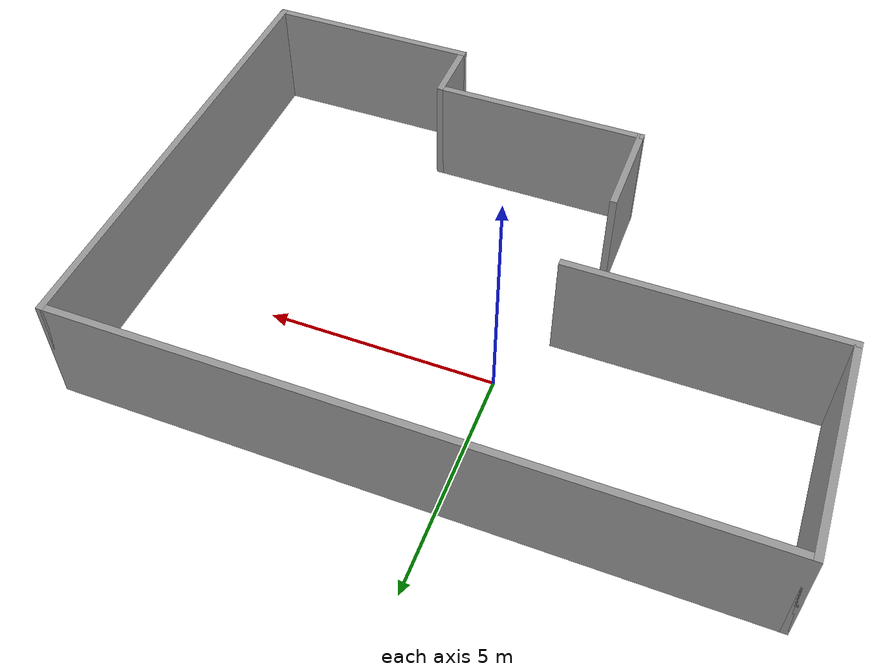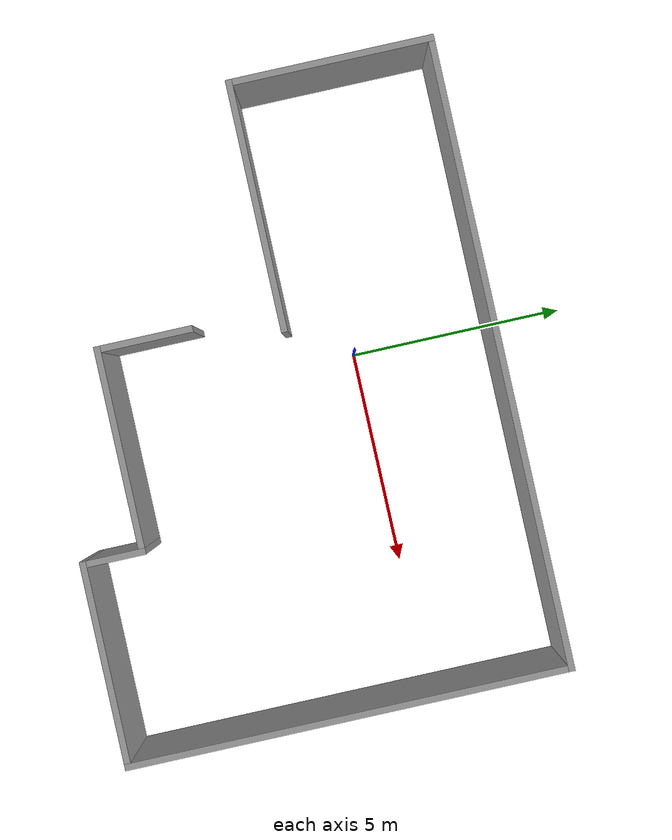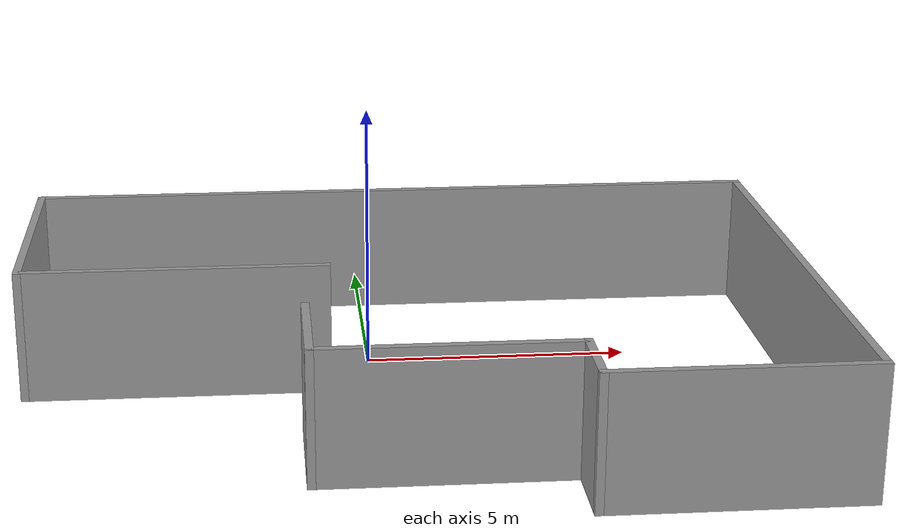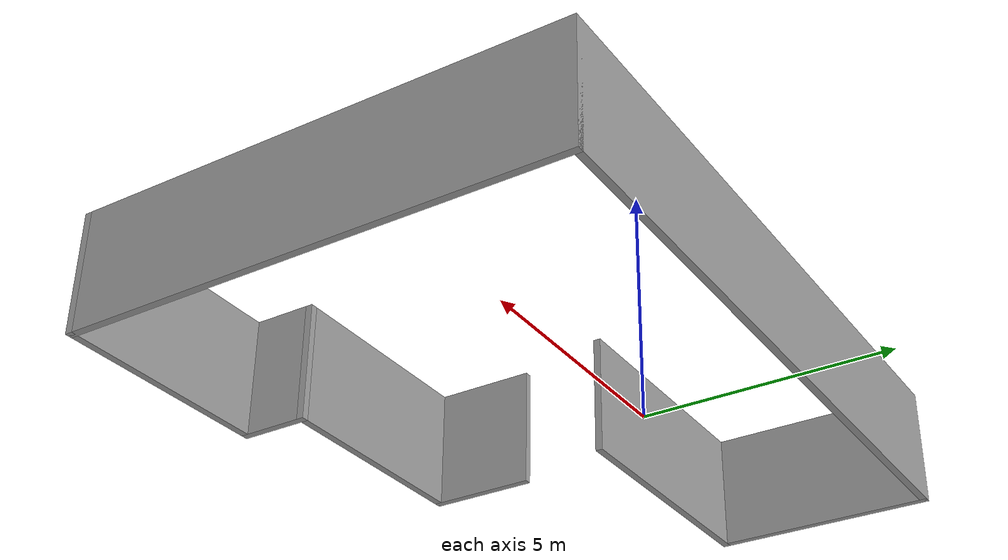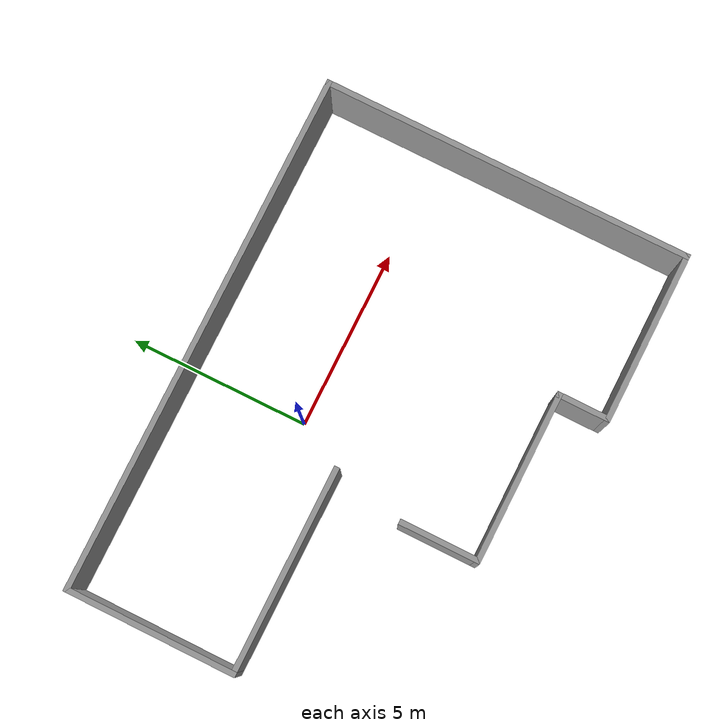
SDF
<?xml version='1.0'?>
<sdf version='1.6'>
  <model name='final_room'>
    <pose frame=''>0.735 -1.87 0 0 -0 0</pose>
    <link name='Wall_0'>
      <collision name='Wall_0_Collision'>
        <geometry>
          <box>
            <size>5.75 0.15 2.5</size>
          </box>
        </geometry>
        <pose frame=''>0 0 1.25 0 -0 0</pose>
      </collision>
      <visual name='Wall_0_Visual'>
        <pose frame=''>0 0 1.25 0 -0 0</pose>
        <geometry>
          <box>
            <size>5.75 0.15 2.5</size>
          </box>
        </geometry>
        <material>
          <script>
            <uri>file://media/materials/scripts/gazebo.material</uri>
            <name>Gazebo/Grey</name>
          </script>
          <ambient>1 1 1 1</ambient>
        </material>
        <meta>
          <layer>0</layer>
        </meta>
      </visual>
      <pose frame=''>-4.375 0.45 0 0 -0 3.14159</pose>
    </link>
    <link name='Wall_1'>
      <collision name='Wall_1_Collision'>
        <geometry>
          <box>
            <size>4.75 0.15 2.5</size>
          </box>
        </geometry>
        <pose frame=''>0 0 1.25 0 -0 0</pose>
      </collision>
      <visual name='Wall_1_Visual'>
        <pose frame=''>0 0 1.25 0 -0 0</pose>
        <geometry>
          <box>
            <size>4.75 0.15 2.5</size>
          </box>
        </geometry>
        <material>
          <script>
            <uri>file://media/materials/scripts/gazebo.material</uri>
            <name>Gazebo/Grey</name>
          </script>
          <ambient>1 1 1 1</ambient>
        </material>
        <meta>
          <layer>0</layer>
        </meta>
      </visual>
      <pose frame=''>-7.175 2.75 0 0 -0 1.5708</pose>
    </link>
    <link name='Wall_2'>
      <collision name='Wall_2_Collision'>
        <geometry>
          <box>
            <size>14.5 0.15 2.5</size>
          </box>
        </geometry>
        <pose frame=''>0 0 1.25 0 -0 0</pose>
      </collision>
      <visual name='Wall_2_Visual'>
        <pose frame=''>0 0 1.25 0 -0 0</pose>
        <geometry>
          <box>
            <size>14.5 0.15 2.5</size>
          </box>
        </geometry>
        <material>
          <script>
            <uri>file://media/materials/scripts/gazebo.material</uri>
            <name>Gazebo/Grey</name>
          </script>
          <ambient>1 1 1 1</ambient>
        </material>
        <meta>
          <layer>0</layer>
        </meta>
      </visual>
      <pose frame=''>-0 5.05 0 0 -0 0</pose>
    </link>
    <link name='Wall_3'>
      <collision name='Wall_3_Collision'>
        <geometry>
          <box>
            <size>10.25 0.15 2.5</size>
          </box>
        </geometry>
        <pose frame=''>0 0 1.25 0 -0 0</pose>
      </collision>
      <visual name='Wall_3_Visual'>
        <pose frame=''>0 0 1.25 0 -0 0</pose>
        <geometry>
          <box>
            <size>10.25 0.15 2.5</size>
          </box>
        </geometry>
        <material>
          <script>
            <uri>file://media/materials/scripts/gazebo.material</uri>
            <name>Gazebo/Grey</name>
          </script>
          <ambient>1 1 1 1</ambient>
        </material>
        <meta>
          <layer>0</layer>
        </meta>
      </visual>
      <pose frame=''>7.175 -0 0 0 -0 -1.5708</pose>
    </link>
    <link name='Wall_4'>
      <collision name='Wall_4_Collision'>
        <geometry>
          <box>
            <size>4.75 0.15 2.5</size>
          </box>
        </geometry>
        <pose frame=''>0 0 1.25 0 -0 0</pose>
      </collision>
      <visual name='Wall_4_Visual'>
        <pose frame=''>0 0 1.25 0 -0 0</pose>
        <geometry>
          <box>
            <size>4.75 0.15 2.5</size>
          </box>
        </geometry>
        <material>
          <script>
            <uri>file://media/materials/scripts/gazebo.material</uri>
            <name>Gazebo/Grey</name>
          </script>
          <ambient>1 1 1 1</ambient>
        </material>
        <meta>
          <layer>0</layer>
        </meta>
      </visual>
      <pose frame=''>4.875 -5.05 0 0 -0 3.14159</pose>
    </link>
    <link name='Wall_5'>
      <collision name='Wall_5_Collision'>
        <geometry>
          <box>
            <size>1.5 0.15 2.5</size>
          </box>
        </geometry>
        <pose frame=''>0 0 1.25 0 -0 0</pose>
      </collision>
      <visual name='Wall_5_Visual'>
        <pose frame=''>0 0 1.25 0 -0 0</pose>
        <geometry>
          <box>
            <size>1.5 0.15 2.5</size>
          </box>
        </geometry>
        <material>
          <script>
            <uri>file://media/materials/scripts/gazebo.material</uri>
            <name>Gazebo/Grey</name>
          </script>
          <ambient>1 1 1 1</ambient>
        </material>
        <meta>
          <layer>0</layer>
        </meta>
      </visual>
      <pose frame=''>2.575 -4.375 0 0 -0 1.5708</pose>
    </link>
    <link name='Wall_6'>
      <collision name='Wall_6_Collision'>
        <geometry>
          <box>
            <size>4.75 0.15 2.5</size>
          </box>
        </geometry>
        <pose frame=''>0 0 1.25 0 -0 0</pose>
      </collision>
      <visual name='Wall_6_Visual'>
        <pose frame=''>0 0 1.25 0 -0 0</pose>
        <geometry>
          <box>
            <size>4.75 0.15 2.5</size>
          </box>
        </geometry>
        <material>
          <script>
            <uri>file://media/materials/scripts/gazebo.material</uri>
            <name>Gazebo/Grey</name>
          </script>
          <ambient>1 1 1 1</ambient>
        </material>
        <meta>
          <layer>0</layer>
        </meta>
      </visual>
      <pose frame=''>0.275 -3.7 0 0 -0 3.14159</pose>
    </link>
    <link name='Wall_7'>
      <collision name='Wall_7_Collision'>
        <geometry>
          <box>
            <size>2.25 0.15 2.5</size>
          </box>
        </geometry>
        <pose frame=''>0 0 1.25 0 -0 0</pose>
      </collision>
      <visual name='Wall_7_Visual'>
        <pose frame=''>0 0 1.25 0 -0 0</pose>
        <geometry>
          <box>
            <size>2.25 0.15 2.5</size>
          </box>
        </geometry>
        <material>
          <script>
            <uri>file://media/materials/scripts/gazebo.material</uri>
            <name>Gazebo/Grey</name>
          </script>
          <ambient>1 1 1 1</ambient>
        </material>
        <meta>
          <layer>0</layer>
        </meta>
      </visual>
      <pose frame=''>-2.025 -2.65 0 0 -0 1.5708</pose>
    </link>
    <static>1</static>
  </model>
</sdf>
